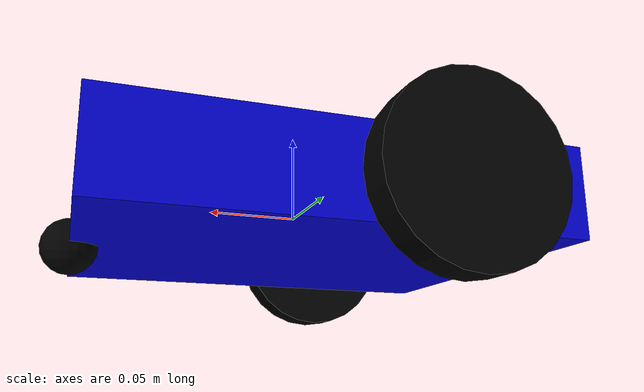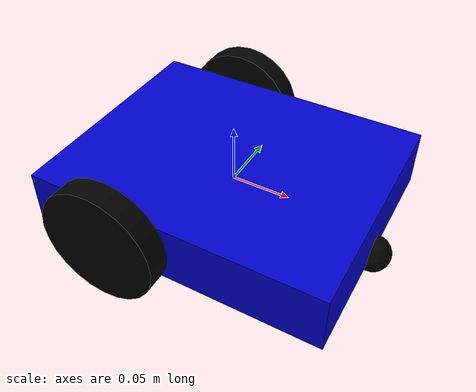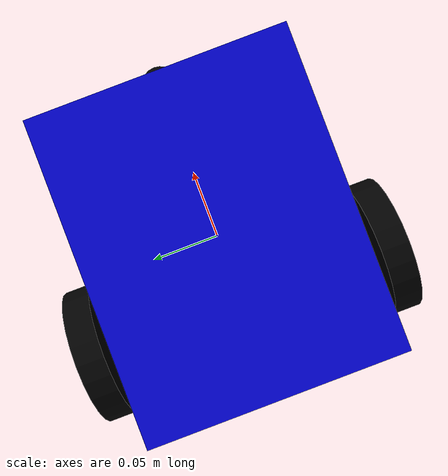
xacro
<?xml version="1.0"?>
<robot xmlns:xacro="http://www.ros.org/xacro" name="mobilebot" >

  <!-- ======================== Constants ======================== -->

  <!-- Main chassis dimensions -->
  <xacro:property name="chassis_length" value="0.25"/>
  <xacro:property name="chassis_width" value="0.20"/>
  <xacro:property name="chassis_height" value="0.05"/>
  <xacro:property name="chassis_mass" value="2.0"/>

  <!-- Wheel properties -->
  <xacro:property name="wheel_radius" value="0.05"/>
  <xacro:property name="wheel_thickness" value="0.02"/>
  <xacro:property name="wheel_mass" value="0.2"/>
  <xacro:property name="wheel_separation" value="0.22"/>
  <xacro:property name="wheel_offset_from_center" value="0.05"/>

  <!-- Caster wheel properties -->
  <xacro:property name="caster_radius" value="0.015"/>
  <xacro:property name="caster_mass" value="0.05"/>

  <!-- ======================== Xacro Macro for Wheel ======================== -->
  <xacro:macro name="wheel_macro" params="name">
    <link name="${name}_link">
      <visual>
        <origin xyz="0 0 0" rpy="${pi/2} 0 0"/>
        <geometry>
          <cylinder radius="${wheel_radius}" length="${wheel_thickness}"/>
        </geometry>
        <material name="Black"/>
      </visual>

      <collision>
        <origin xyz="0 0 0" rpy="${pi/2} 0 0"/>
        <geometry>
          <cylinder radius="${wheel_radius}" length="${wheel_thickness}"/>
        </geometry>
      </collision>

      <inertial>
        <mass value="${wheel_mass}"/>
        <inertia ixx="${(1/12) * wheel_mass * (3 * wheel_radius*wheel_radius + wheel_thickness*wheel_thickness)}"
                 iyy="${(1/12) * wheel_mass * (3 * wheel_radius*wheel_radius + wheel_thickness*wheel_thickness)}"
                 izz="${(1/2) * wheel_mass * (wheel_radius*wheel_radius)}"
                 ixy="0" ixz="0" iyz="0"/>
      </inertial>
    </link>
  </xacro:macro>

  <!-- ======================== Base Link (Chassis) ======================== -->
  <link name="base_link">
    <visual>
      <origin xyz="0 0 0" rpy="0 0 0"/>
      <geometry>
        <box size="${chassis_length} ${chassis_width} ${chassis_height}"/>
      </geometry>
      <material name="Blue"/>
    </visual>

    <collision>
      <origin xyz="0 0 0" rpy="0 0 0"/>
      <geometry>
        <box size="${chassis_length} ${chassis_width} ${chassis_height}"/>
      </geometry>
    </collision>

    <inertial>
      <mass value="${chassis_mass}"/>
      <inertia ixx="${(1/12) * chassis_mass * (chassis_width*chassis_width + chassis_height*chassis_height)}"
               iyy="${(1/12) * chassis_mass * (chassis_length*chassis_length + chassis_height*chassis_height)}"
               izz="${(1/12) * chassis_mass * (chassis_length*chassis_length + chassis_width*chassis_width)}"
               ixy="0" ixz="0" iyz="0"/>
    </inertial>
  </link>

  <!-- ======================== Left and Right Wheels ======================== -->
  <xacro:wheel_macro name="left_wheel"/>
  <xacro:wheel_macro name="right_wheel"/>

  <!-- ======================== Joints ======================== -->
  <joint name="base_to_left_wheel" type="continuous">
    <parent link="base_link"/>
    <child link="left_wheel_link"/>
    <origin xyz="-${wheel_offset_from_center} ${wheel_separation/2} 0" rpy="0 0 0"/>
    <axis xyz="0 1 0"/>
  </joint>

  <joint name="base_to_right_wheel" type="continuous">
    <parent link="base_link"/>
    <child link="right_wheel_link"/>
    <origin xyz="-${wheel_offset_from_center} -${wheel_separation/2} 0" rpy="0 0 0"/>
    <axis xyz="0 1 0"/>
  </joint>

  <!-- ======================== Caster Wheel (Fixed) ======================== -->
  <link name="caster_link">
    <visual>
      <origin xyz="0 0 0" rpy="0 0 0"/>
      <geometry>
        <sphere radius="${caster_radius}"/>
      </geometry>
      <material name="Black"/>
    </visual>

    <collision>
      <origin xyz="0 0 0" rpy="0 0 0"/>
      <geometry>
        <sphere radius="${caster_radius}"/>
      </geometry>
    </collision>

    <inertial>
      <mass value="${caster_mass}"/>
      <inertia ixx="${(2/5) * caster_mass * caster_radius*caster_radius}"
               iyy="${(2/5) * caster_mass * caster_radius*caster_radius}"
               izz="${(2/5) * caster_mass * caster_radius*caster_radius}"
               ixy="0" ixz="0" iyz="0"/>
    </inertial>
  </link>

  <joint name="base_to_caster" type="fixed">
    <parent link="base_link"/>
    <child link="caster_link"/>
    <origin xyz="${chassis_length/2} 0 -${chassis_height/2}" rpy="0 0 0"/>
  </joint>

  <!-- ======================== Materials ======================== -->
  <material name="Black">
    <color rgba="0.0 0.0 0.0 1.0"/>
  </material>

  <material name="Blue">
    <color rgba="0.0 0.0 0.8 1.0"/>
  </material>

  <gazebo>
    <plugin
        filename="ignition-gazebo-joint-state-publisher-system"
        name="ignition::gazebo::systems::JointStatePublisher ">
        <topic>joint_states</topic>
    </plugin>
    <plugin
        filename="gz-sim-diff-drive-system"
        name="gz::sim::systems::DiffDrive">
        <left_joint>base_to_left_wheel</left_joint>
        <right_joint>base_to_right_wheel</right_joint>
        <wheel_separation>0.22</wheel_separation>
        <wheel_radius>0.05</wheel_radius>
        <odom_publish_frequency>1</odom_publish_frequency>
        <topic>cmd_vel</topic>
    </plugin>
  </gazebo>

</robot>
